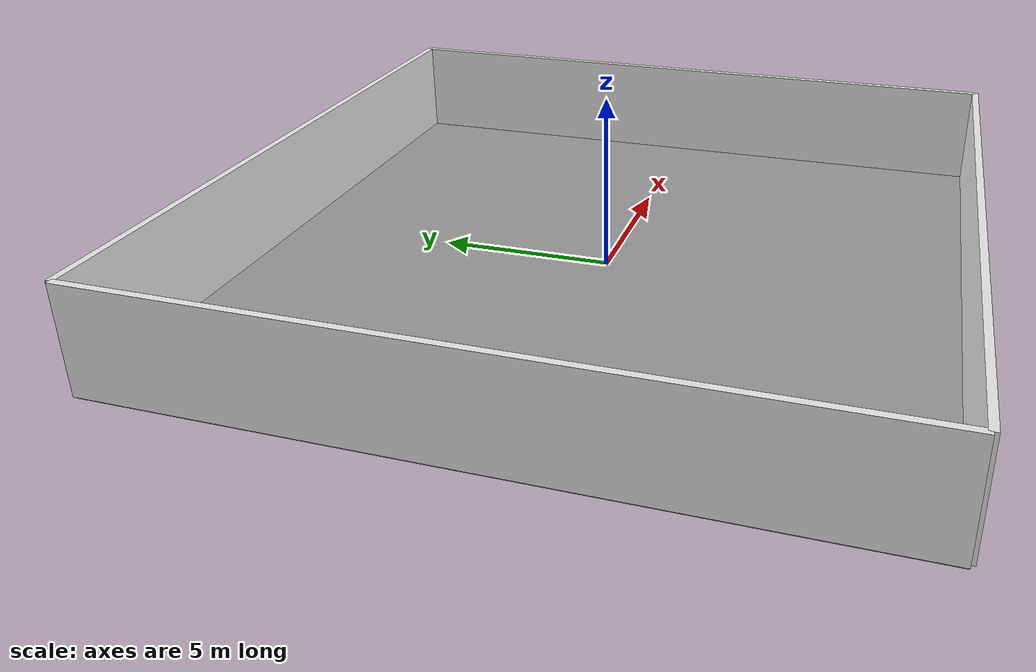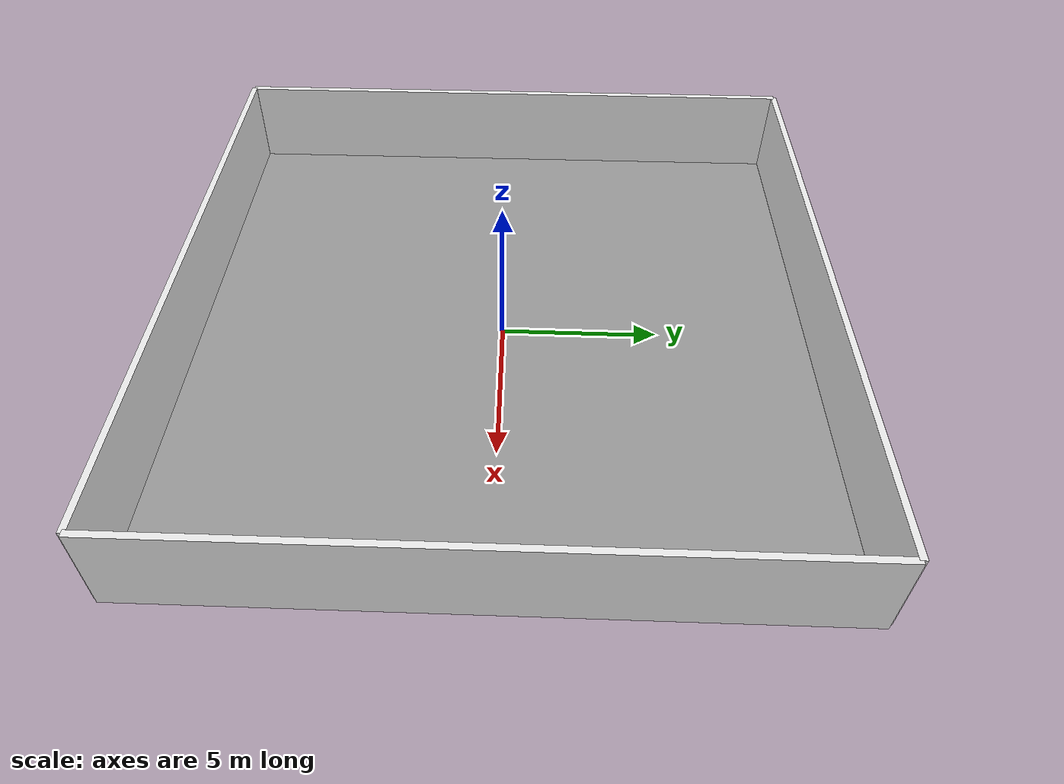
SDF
<sdf version="1.6">
 <world name="indoor">
  <include><uri>model://sun</uri></include>
  <model name="floor">
   <static>true</static>
   <link name="link">
    <collision name="collision"><geometry><box><size>20 20 0.1</size></box></geometry></collision>
    <visual name="visual">
     <geometry><box><size>20 20 0.1</size></box></geometry>
     <material>
      <script><uri>file://media/materials/scripts/gazebo.material</uri><name>Gazebo/Grey</name></script>
     </material>
    </visual>
   </link>
   <pose>0 0 -0.05 0 0 0</pose>
  </model>
  <model name="wall_north">
   <static>true</static>
   <link name="link">
    <collision name="collision"><geometry><box><size>20 0.2 3</size></box></geometry></collision>
    <visual name="visual">
     <geometry><box><size>20 0.2 3</size></box></geometry>
     <material>
      <script><uri>file://media/materials/scripts/gazebo.material</uri><name>Gazebo/White</name></script>
     </material>
    </visual>
   </link>
   <pose>0 10 1.5 0 0 0</pose>
  </model>
  <model name="wall_south">
   <static>true</static>
   <link name="link">
    <collision name="collision"><geometry><box><size>20 0.2 3</size></box></geometry></collision>
    <visual name="visual">
     <geometry><box><size>20 0.2 3</size></box></geometry>
     <material>
      <script><uri>file://media/materials/scripts/gazebo.material</uri><name>Gazebo/White</name></script>
     </material>
    </visual>
   </link>
   <pose>0 -10 1.5 0 0 0</pose>
  </model>
  <model name="wall_east">
   <static>true</static>
   <link name="link">
    <collision name="collision"><geometry><box><size>0.2 20 3</size></box></geometry></collision>
    <visual name="visual">
     <geometry><box><size>0.2 20 3</size></box></geometry>
     <material>
      <script><uri>file://media/materials/scripts/gazebo.material</uri><name>Gazebo/White</name></script>
     </material>
    </visual>
   </link>
   <pose>10 0 1.5 0 0 0</pose>
  </model>
  <model name="wall_west">
   <static>true</static>
   <link name="link">
    <collision name="collision"><geometry><box><size>0.2 20 3</size></box></geometry></collision>
    <visual name="visual">
     <geometry><box><size>0.2 20 3</size></box></geometry>
     <material>
      <script><uri>file://media/materials/scripts/gazebo.material</uri><name>Gazebo/White</name></script>
     </material>
    </visual>
   </link>
   <pose>-10 0 1.5 0 0 0</pose>
  </model>
  <physics name="default_physics" default="0" type="ode">
   <gravity>0 0 -9.8066</gravity>
   <ode>
    <solver>
     <type>quick</type>
     <iters>10</iters>
     <sor>1.3</sor>
     <use_dynamic_moi_rescaling>0</use_dynamic_moi_rescaling>
    </solver>
    <constraints>
     <cfm>0</cfm>
     <erp>0.2</erp>
     <contact_max_correcting_vel>100</contact_max_correcting_vel>
     <contact_surface_layer>0.001</contact_surface_layer>
    </constraints>
   </ode>
   <max_step_size>0.004</max_step_size>
   <real_time_factor>1</real_time_factor>
   <real_time_update_rate>250</real_time_update_rate>
   <magnetic_field>6.0e-6 2.3e-5 -4.2e-5</magnetic_field>
  </physics>
 </world>
</sdf>
